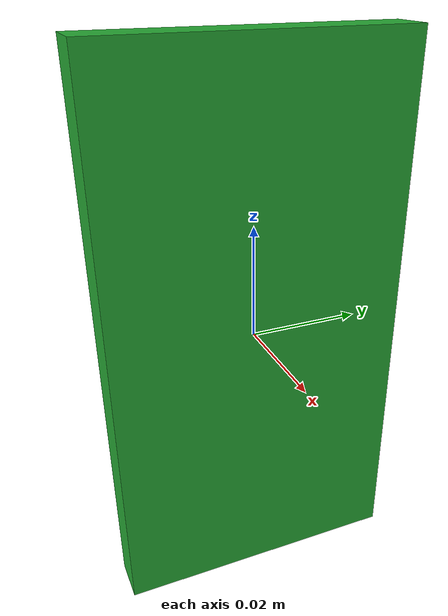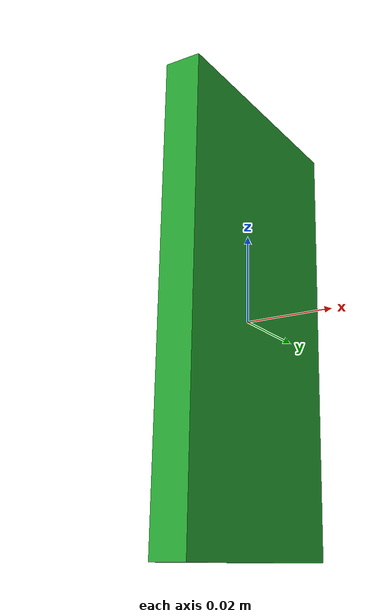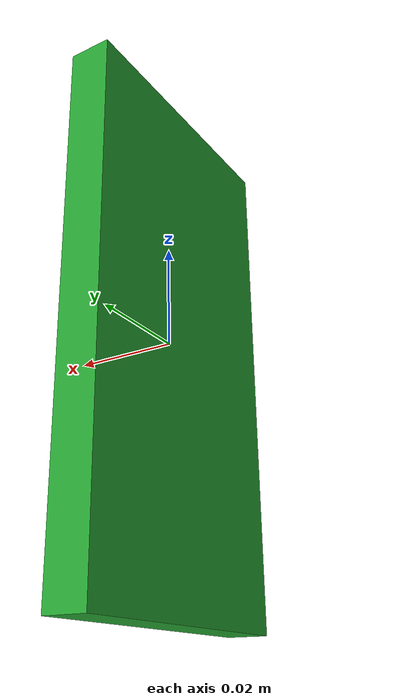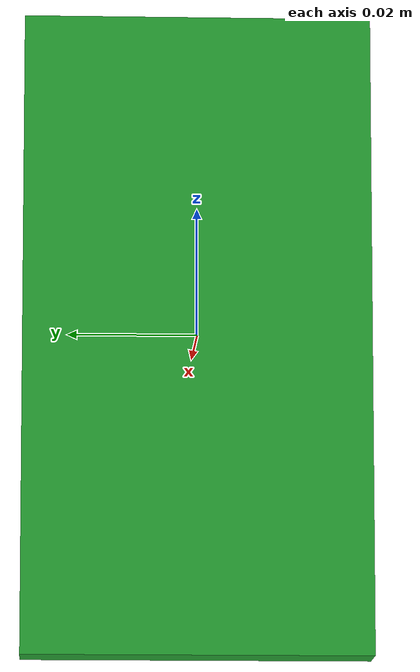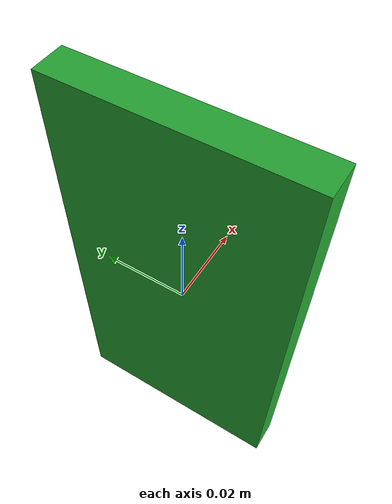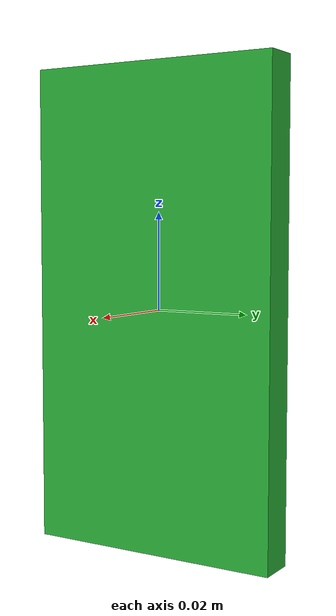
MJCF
<?xml version="1.0" ?>
<mujoco model="peg1">
    <asset>
        <mesh file="peg/0.stl" name="mesh_0"/>
        <texture file="../texture/green-wood.png" name="green-wood"/>
        <material name="greenwood_mat" texture="green-wood" texrepeat="1 1" specular="0.4" shininess="0.1"/>
    </asset>
    <worldbody>
        <body>
            <body name="object">
                <geom mesh="mesh_0" type="mesh" group="0" material="greenwood_mat"/>
            </body>
        </body>
    </worldbody>
</mujoco>
